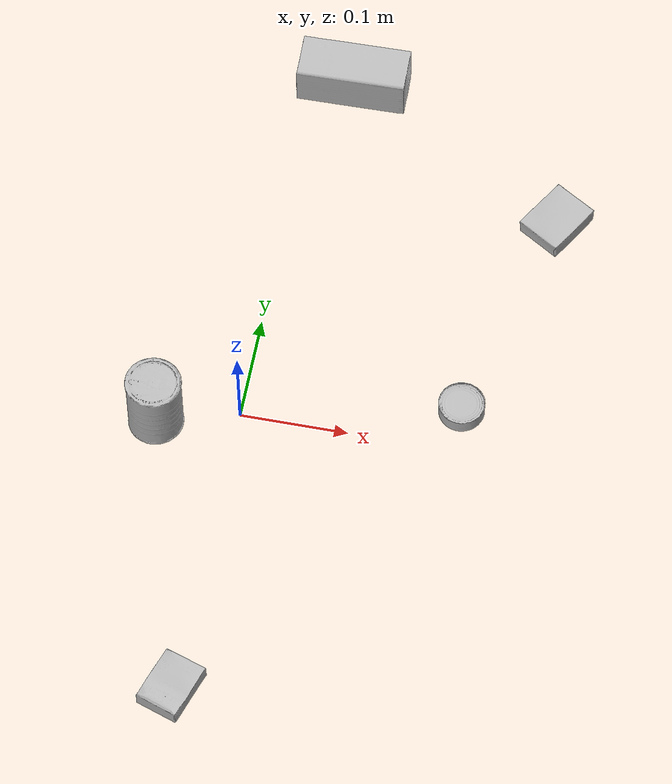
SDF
<sdf version="1.4">
  <world name="default">
    <light name="light1" type="point">
      <pose>0 0 1 0 0 0</pose>
      <diffuse>3 3 3 1</diffuse>
      <specular>3 3 3 1</specular>
    </light>
    <light name="light2" type="point">
      <pose>0 0.5 2 0 0 0</pose>
      <diffuse>1 1 1 1</diffuse>
      <specular>1 1 1 1</specular>
    </light>
    <light name="light3" type="point">
      <pose>0 0.5 2 0 0 0</pose>
      <diffuse>3 3 3 1</diffuse>
      <specular>3 3 3 1</specular>
    </light>
    <scene>
      <ambient>0.7 0.7 0.7</ambient>
    </scene>
    <model name="box1">
      <link name="link_box1">
        <collision name="default">
          <geometry>
            <mesh>
              <uri>model://pudding_box/collision_meshes/collision.obj</uri>
              <scale>0.5 0.5 0.5</scale>
            </mesh>
          </geometry>
          <surface>
            <friction>
              <ode>
                <mu>0.5</mu>
                <mu2>0.5</mu2>
              </ode>
            </friction>
          <contact>
        <ode>
            <max_vel>0</max_vel>
            <min_depth>0.0001</min_depth>
            <kp>1e8</kp>
        </ode>
    </contact></surface>
        </collision>
        <visual name="default">
          <geometry>
            <mesh>
              <uri>model://pudding_box/visual_meshes/visual.dae</uri>
              <scale>0.5 0.5 0.5</scale>
            </mesh>
          </geometry>
        </visual>
        <inertial>
          <mass>0.03999795392155647</mass>
          <pose>0.00024474109522998333 0.0004033942532259971 -0.0002594413817860186 0.005213101299265121 -0.006603799659933957 0.020079830747700592</pose>
          <inertia>
            <ixx>1.1303907e-05</ixx>
            <iyy>7.605349e-06</iyy>
            <izz>1.6693173e-05</izz>
            <ixy>0</ixy>
            <ixz>0</ixz>
            <iyz>0</iyz>
          </inertia>
        </inertial>
      </link>
      <pose>0.24867887794971466 0.253231406211853 0.009862909093499184 0.022348416937596385 -0.011391865260539924 -0.5633468747943687</pose>
    </model>
    <model name="box2">
      <link name="link_box2">
        <collision name="default">
          <geometry>
            <mesh>
              <uri>model://cracker_box/collision_meshes/collision.obj</uri>
              <scale>0.25 0.25 0.25</scale>
            </mesh>
          </geometry>
          <surface>
            <friction>
              <ode>
                <mu>0.5</mu>
                <mu2>0.5</mu2>
              </ode>
            </friction>
          <contact>
        <ode>
            <max_vel>0</max_vel>
            <min_depth>0.0001</min_depth>
            <kp>1e8</kp>
        </ode>
    </contact></surface>
        </collision>
        <visual name="default">
          <geometry>
            <mesh>
              <uri>model://cracker_box/visual_meshes/visual.dae</uri>
              <scale>0.25 0.25 0.25</scale>
            </mesh>
          </geometry>
        </visual>
        <inertial>
          <mass>0.046595875173807144</mass>
          <pose>0.00023660322767682374 6.358561950037256e-05 -0.0004257383698131889 -0.00031620768958073674 -0.011106491463008503 0.002546795235494827</pose>
          <inertia>
            <ixx>7.407444e-06</ixx>
            <iyy>1.2231146e-05</iyy>
            <izz>1.7454966e-05</izz>
            <ixy>0</ixy>
            <ixz>0</ixz>
            <iyz>0</iyz>
          </inertia>
        </inertial>
      </link>
      <pose>-0.0035681193694472313 -0.280569851398468 0.009096026420593262 -0.014050284710562456 -0.005016798853344234 1.2324573603084727</pose>
    </model>
    <model name="box3">
      <link name="link_box3">
        <collision name="default">
          <geometry>
            <mesh>
              <uri>model://wood_block/collision_meshes/collision.obj</uri>
              <scale>0.5 0.5 0.5</scale>
            </mesh>
          </geometry>
          <surface>
            <friction>
              <ode>
                <mu>0.5</mu>
                <mu2>0.5</mu2>
              </ode>
            </friction>
          <contact>
        <ode>
            <max_vel>0</max_vel>
            <min_depth>0.0001</min_depth>
            <kp>1e8</kp>
        </ode>
    </contact></surface>
        </collision>
        <visual name="default">
          <geometry>
            <mesh>
              <uri>model://wood_block/visual_meshes/visual.dae</uri>
              <scale>0.5 0.5 0.5</scale>
            </mesh>
          </geometry>
        </visual>
        <inertial>
          <mass>0.28600308299064636</mass>
          <pose>-2.9066577553749084e-06 -0.000285404734313488 0.00013204291462898254 -0.052207212015849935 -0.005192697210617926 -0.006861377963206113</pose>
          <inertia>
            <ixx>9.567885e-05</ixx>
            <iyy>0.00030224954</iyy>
            <izz>0.00030111894</izz>
            <ixy>0</ixy>
            <ixz>0</ixz>
            <iyz>0</iyz>
          </inertia>
        </inertial>
      </link>
      <pose>0.034622397273778915 0.36902889609336853 0.0226292684674263 -0.005208625631272899 0.005718772012853383 0.016864910569815043</pose>
    </model>
    <model name="can1">
      <link name="link_can1">
        <collision name="default">
          <geometry>
            <mesh>
              <uri>model://master_chef_can/collision_meshes/collision.obj</uri>
              <scale>0.5 0.5 0.5</scale>
            </mesh>
          </geometry>
          <surface>
            <friction>
              <ode>
                <mu>0.5</mu>
                <mu2>0.5</mu2>
              </ode>
            </friction>
          <contact>
        <ode>
            <max_vel>0</max_vel>
            <min_depth>0.0001</min_depth>
            <kp>1e8</kp>
        </ode>
    </contact></surface>
        </collision>
        <visual name="default">
          <geometry>
            <mesh>
              <uri>model://master_chef_can/visual_meshes/visual.dae</uri>
              <scale>0.5 0.5 0.5</scale>
            </mesh>
          </geometry>
        </visual>
        <inertial>
          <mass>0.116209015250206</mass>
          <pose>-4.661964703700505e-05 1.3926850783718692e-07 -5.0799026212189347e-05 -0.001799512795725948 0.0006479254888938259 -0.6102617322721998</pose>
          <inertia>
            <ixx>6.820682e-05</ixx>
            <iyy>6.7704816e-05</iyy>
            <izz>3.768948e-05</izz>
            <ixy>0</ixy>
            <ixz>0</ixz>
            <iyz>0</iyz>
          </inertia>
        </inertial>
      </link>
      <pose>-0.07379532605409622 -0.01908712461590767 0.035301998257637024 -1.4462385905660889e-06 -6.893647500700658e-07 -2.6349685116428754</pose>
    </model>
    <model name="can2">
      <link name="link_can2">
        <collision name="default">
          <geometry>
            <mesh>
              <uri>model://tuna_fish_can/collision_meshes/collision.obj</uri>
              <scale>0.5 0.5 0.5</scale>
            </mesh>
          </geometry>
          <surface>
            <friction>
              <ode>
                <mu>0.5</mu>
                <mu2>0.5</mu2>
              </ode>
            </friction>
          <contact>
        <ode>
            <max_vel>0</max_vel>
            <min_depth>0.0001</min_depth>
            <kp>1e8</kp>
        </ode>
    </contact></surface>
        </collision>
        <visual name="default">
          <geometry>
            <mesh>
              <uri>model://tuna_fish_can/visual_meshes/visual.dae</uri>
              <scale>0.5 0.5 0.5</scale>
            </mesh>
          </geometry>
        </visual>
        <inertial>
          <mass>0.017585277557373047</mass>
          <pose>-2.03625786525663e-05 -7.2565176196803804e-06 -0.000526902440469712 -0.0017944765250671837 0.00017163661440384507 0.24054644931605637</pose>
          <inertia>
            <ixx>2.3775558e-06</ixx>
            <iyy>2.3676464e-06</iyy>
            <izz>4.0683376e-06</izz>
            <ixy>0</ixy>
            <ixz>0</ixz>
            <iyz>0</iyz>
          </inertia>
        </inertial>
      </link>
      <pose>0.1968638151884079 0.04142618924379349 0.008519998751580715 -1.5416096567032728e-08 -9.684558361329067e-09 2.2472762019714962</pose>
    </model>
  <physics type="ode">
      <max_contacts>50</max_contacts>
      <ode>
        <solver>
          <type>quick</type>
          <iters>75</iters>
        </solver>
        <constraints>
          <contact_max_correcting_vel>0</contact_max_correcting_vel>
          <contact_surface_layer>0</contact_surface_layer>
        </constraints>
      </ode>
    </physics></world>
</sdf>
